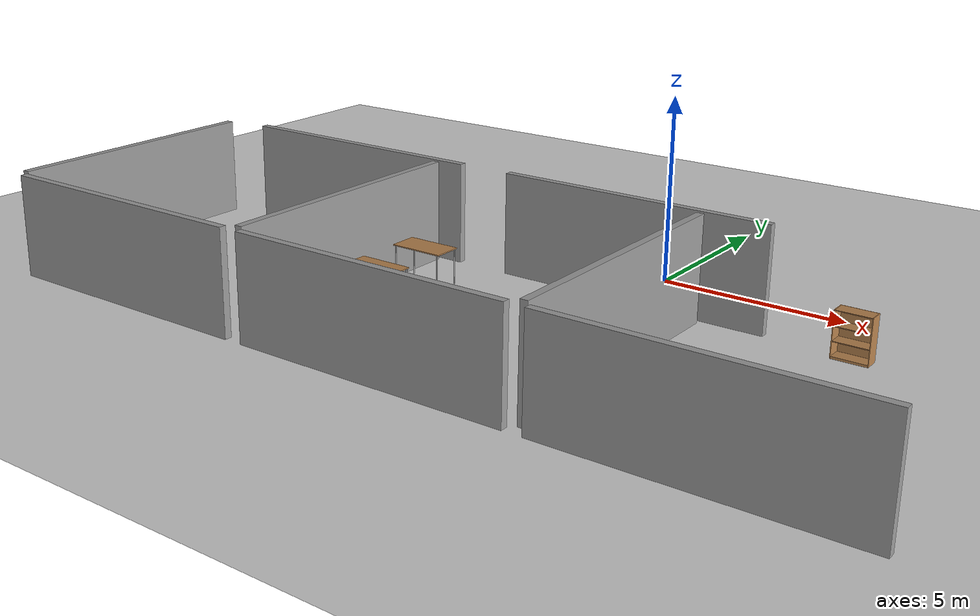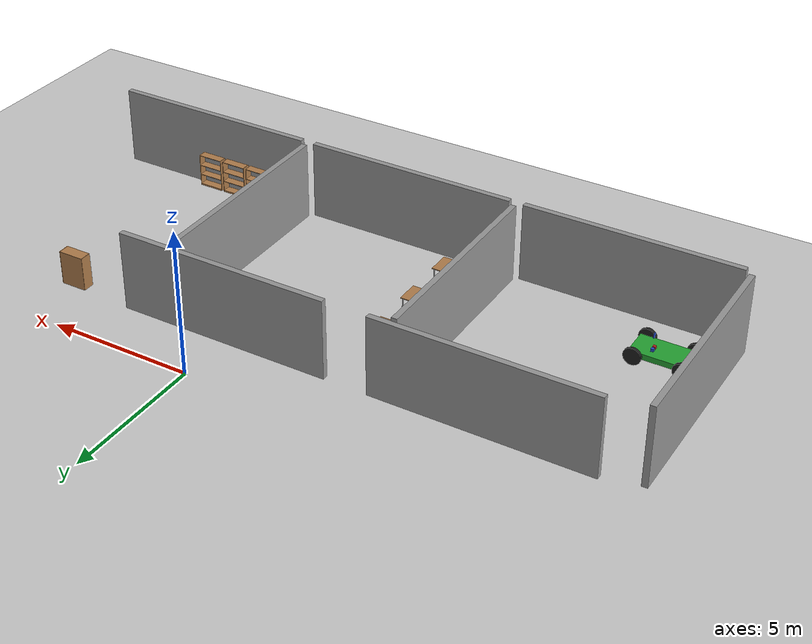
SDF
<sdf version="1.4">
 <world name="default">
  <model name="ground_plane">
   <static>1</static>
   <link name="link">
    <collision name="collision">
     <geometry><plane><normal>0 0 1</normal><size>100 100</size></plane></geometry>
     <surface><friction><ode><mu>100</mu><mu2>50</mu2></ode></friction></surface>
    </collision>
    <visual name="visual">
     <cast_shadows>0</cast_shadows>
     <geometry><plane><normal>0 0 1</normal><size>100 100</size></plane></geometry>
     <material>
      <script><uri>file://media/materials/scripts/gazebo.material</uri><name>Gazebo/Grey</name></script>
     </material>
    </visual>
    <velocity_decay><linear>0</linear><angular>0</angular></velocity_decay>
   </link>
  </model>
  <model name="grey_wall">
   <static>1</static>
   <link name="link">
    <pose>0 0 1.4 0 -0 0</pose>
    <collision name="collision"><geometry><box><size>7.5 0.2 2.8</size></box></geometry></collision>
    <visual name="visual">
     <cast_shadows>0</cast_shadows>
     <geometry><box><size>7.5 0.2 2.8</size></box></geometry>
     <material>
      <script>
       <uri>model://grey_wall/materials/scripts</uri>
       <uri>model://grey_wall/materials/textures</uri>
       <name>vrc/grey_wall</name>
      </script>
     </material>
    </visual>
    <velocity_decay><linear>0</linear><angular>0</angular></velocity_decay>
   </link>
   <pose>-2 -10 0 0 -0 0</pose>
  </model>
  <model name="grey_wall_0">
   <static>1</static>
   <link name="link">
    <pose>0 0 1.4 0 -0 0</pose>
    <collision name="collision"><geometry><box><size>7.5 0.2 2.8</size></box></geometry></collision>
    <visual name="visual">
     <cast_shadows>0</cast_shadows>
     <geometry><box><size>7.5 0.2 2.8</size></box></geometry>
     <material>
      <script>
       <uri>model://grey_wall/materials/scripts</uri>
       <uri>model://grey_wall/materials/textures</uri>
       <name>vrc/grey_wall</name>
      </script>
     </material>
    </visual>
    <velocity_decay><linear>0</linear><angular>0</angular></velocity_decay>
   </link>
   <pose>6 -10 0 0 -0 0</pose>
  </model>
  <model name="grey_wall_1">
   <static>1</static>
   <link name="link">
    <pose>0 0 1.4 0 -0 0</pose>
    <collision name="collision"><geometry><box><size>7.5 0.2 2.8</size></box></geometry></collision>
    <visual name="visual">
     <cast_shadows>0</cast_shadows>
     <geometry><box><size>7.5 0.2 2.8</size></box></geometry>
     <material>
      <script>
       <uri>model://grey_wall/materials/scripts</uri>
       <uri>model://grey_wall/materials/textures</uri>
       <name>vrc/grey_wall</name>
      </script>
     </material>
    </visual>
    <velocity_decay><linear>0</linear><angular>0</angular></velocity_decay>
   </link>
   <pose>2 -6 0 0 0 -1.5708</pose>
  </model>
  <model name="grey_wall_4">
   <static>1</static>
   <link name="link">
    <pose>0 0 1.4 0 -0 0</pose>
    <collision name="collision"><geometry><box><size>7.5 0.2 2.8</size></box></geometry></collision>
    <visual name="visual">
     <cast_shadows>0</cast_shadows>
     <geometry><box><size>7.5 0.2 2.8</size></box></geometry>
     <material>
      <script>
       <uri>model://grey_wall/materials/scripts</uri>
       <uri>model://grey_wall/materials/textures</uri>
       <name>vrc/grey_wall</name>
      </script>
     </material>
    </visual>
    <velocity_decay><linear>0</linear><angular>0</angular></velocity_decay>
   </link>
   <pose>0 -2 0 0 -0 0</pose>
  </model>
  <model name="grey_wall_5">
   <static>1</static>
   <link name="link">
    <pose>0 0 1.4 0 -0 0</pose>
    <collision name="collision"><geometry><box><size>7.5 0.2 2.8</size></box></geometry></collision>
    <visual name="visual">
     <cast_shadows>0</cast_shadows>
     <geometry><box><size>7.5 0.2 2.8</size></box></geometry>
     <material>
      <script>
       <uri>model://grey_wall/materials/scripts</uri>
       <uri>model://grey_wall/materials/textures</uri>
       <name>vrc/grey_wall</name>
      </script>
     </material>
    </visual>
    <velocity_decay><linear>0</linear><angular>0</angular></velocity_decay>
   </link>
   <pose>-10 -10 0 0 -0 0</pose>
  </model>
  <model name="grey_wall_6">
   <static>1</static>
   <link name="link">
    <pose>0 0 1.4 0 -0 0</pose>
    <collision name="collision"><geometry><box><size>7.5 0.2 2.8</size></box></geometry></collision>
    <visual name="visual">
     <cast_shadows>0</cast_shadows>
     <geometry><box><size>7.5 0.2 2.8</size></box></geometry>
     <material>
      <script>
       <uri>model://grey_wall/materials/scripts</uri>
       <uri>model://grey_wall/materials/textures</uri>
       <name>vrc/grey_wall</name>
      </script>
     </material>
    </visual>
    <velocity_decay><linear>0</linear><angular>0</angular></velocity_decay>
   </link>
   <pose>-6 -6 0 0 0 -1.5708</pose>
  </model>
  <model name="grey_wall_7">
   <static>1</static>
   <link name="link">
    <pose>0 0 1.4 0 -0 0</pose>
    <collision name="collision"><geometry><box><size>7.5 0.2 2.8</size></box></geometry></collision>
    <visual name="visual">
     <cast_shadows>0</cast_shadows>
     <geometry><box><size>7.5 0.2 2.8</size></box></geometry>
     <material>
      <script>
       <uri>model://grey_wall/materials/scripts</uri>
       <uri>model://grey_wall/materials/textures</uri>
       <name>vrc/grey_wall</name>
      </script>
     </material>
    </visual>
    <velocity_decay><linear>0</linear><angular>0</angular></velocity_decay>
   </link>
   <pose>-9 -2 0 0 -0 0</pose>
  </model>
  <model name="grey_wall_8">
   <static>1</static>
   <link name="link">
    <pose>0 0 1.4 0 -0 0</pose>
    <collision name="collision"><geometry><box><size>7.5 0.2 2.8</size></box></geometry></collision>
    <visual name="visual">
     <cast_shadows>0</cast_shadows>
     <geometry><box><size>7.5 0.2 2.8</size></box></geometry>
     <material>
      <script>
       <uri>model://grey_wall/materials/scripts</uri>
       <uri>model://grey_wall/materials/textures</uri>
       <name>vrc/grey_wall</name>
      </script>
     </material>
    </visual>
    <velocity_decay><linear>0</linear><angular>0</angular></velocity_decay>
   </link>
   <pose>-14 -6 0 0 0 -1.5708</pose>
  </model>
  <model name="bookshelf">
   <static>1</static>
   <link name="link">
    <inertial><mass>1</mass></inertial>
    <collision name="back">
     <pose>0 0.005 0.6 0 -0 0</pose>
     <geometry><box><size>0.9 0.01 1.2</size></box></geometry>
    </collision>
    <visual name="visual1">
     <pose>0 0.005 0.6 0 -0 0</pose>
     <geometry><box><size>0.9 0.01 1.2</size></box></geometry>
     <material>
      <script><uri>file://media/materials/scripts/gazebo.material</uri><name>Gazebo/Wood</name></script>
     </material>
    </visual>
    <collision name="left_side">
     <pose>0.45 -0.195 0.6 0 -0 0</pose>
     <geometry><box><size>0.02 0.4 1.2</size></box></geometry>
    </collision>
    <visual name="visual2">
     <pose>0.45 -0.195 0.6 0 -0 0</pose>
     <geometry><box><size>0.02 0.4 1.2</size></box></geometry>
     <material>
      <script><uri>file://media/materials/scripts/gazebo.material</uri><name>Gazebo/Wood</name></script>
     </material>
    </visual>
    <collision name="right_side">
     <pose>-0.45 -0.195 0.6 0 -0 0</pose>
     <geometry><box><size>0.02 0.4 1.2</size></box></geometry>
    </collision>
    <visual name="visual3">
     <pose>-0.45 -0.195 0.6 0 -0 0</pose>
     <geometry><box><size>0.02 0.4 1.2</size></box></geometry>
     <material>
      <script><uri>file://media/materials/scripts/gazebo.material</uri><name>Gazebo/Wood</name></script>
     </material>
    </visual>
    <collision name="bottom">
     <pose>0 -0.195 0.03 0 -0 0</pose>
     <geometry><box><size>0.88 0.4 0.06</size></box></geometry>
    </collision>
    <visual name="visual4">
     <pose>0 -0.195 0.03 0 -0 0</pose>
     <geometry><box><size>0.88 0.4 0.06</size></box></geometry>
     <material>
      <script><uri>file://media/materials/scripts/gazebo.material</uri><name>Gazebo/Wood</name></script>
     </material>
    </visual>
    <collision name="top">
     <pose>0 -0.195 1.19 0 -0 0</pose>
     <geometry><box><size>0.88 0.4 0.02</size></box></geometry>
    </collision>
    <visual name="visual5">
     <pose>0 -0.195 1.19 0 -0 0</pose>
     <geometry><box><size>0.88 0.4 0.02</size></box></geometry>
     <material>
      <script><uri>file://media/materials/scripts/gazebo.material</uri><name>Gazebo/Wood</name></script>
     </material>
    </visual>
    <collision name="low_shelf">
     <pose>0 -0.195 0.43 0 -0 0</pose>
     <geometry><box><size>0.88 0.4 0.02</size></box></geometry>
    </collision>
    <visual name="visual6">
     <pose>0 -0.195 0.43 0 -0 0</pose>
     <geometry><box><size>0.88 0.4 0.02</size></box></geometry>
     <material>
      <script><uri>file://media/materials/scripts/gazebo.material</uri><name>Gazebo/Wood</name></script>
     </material>
    </visual>
    <collision name="high_shelf">
     <pose>0 -0.195 0.8 0 -0 0</pose>
     <geometry><box><size>0.88 0.4 0.02</size></box></geometry>
    </collision>
    <visual name="visual7">
     <pose>0 -0.195 0.8 0 -0 0</pose>
     <geometry><box><size>0.88 0.4 0.02</size></box></geometry>
     <material>
      <script><uri>file://media/materials/scripts/gazebo.material</uri><name>Gazebo/Wood</name></script>
     </material>
    </visual>
    <velocity_decay><linear>0</linear><angular>0</angular></velocity_decay>
   </link>
   <pose>2.43808 -9.56157 0 0 -0 2.35619</pose>
  </model>
  <model name="bookshelf_0">
   <static>1</static>
   <link name="link">
    <inertial><mass>1</mass></inertial>
    <collision name="back">
     <pose>0 0.005 0.6 0 -0 0</pose>
     <geometry><box><size>0.9 0.01 1.2</size></box></geometry>
    </collision>
    <visual name="visual1">
     <pose>0 0.005 0.6 0 -0 0</pose>
     <geometry><box><size>0.9 0.01 1.2</size></box></geometry>
     <material>
      <script><uri>file://media/materials/scripts/gazebo.material</uri><name>Gazebo/Wood</name></script>
     </material>
    </visual>
    <collision name="left_side">
     <pose>0.45 -0.195 0.6 0 -0 0</pose>
     <geometry><box><size>0.02 0.4 1.2</size></box></geometry>
    </collision>
    <visual name="visual2">
     <pose>0.45 -0.195 0.6 0 -0 0</pose>
     <geometry><box><size>0.02 0.4 1.2</size></box></geometry>
     <material>
      <script><uri>file://media/materials/scripts/gazebo.material</uri><name>Gazebo/Wood</name></script>
     </material>
    </visual>
    <collision name="right_side">
     <pose>-0.45 -0.195 0.6 0 -0 0</pose>
     <geometry><box><size>0.02 0.4 1.2</size></box></geometry>
    </collision>
    <visual name="visual3">
     <pose>-0.45 -0.195 0.6 0 -0 0</pose>
     <geometry><box><size>0.02 0.4 1.2</size></box></geometry>
     <material>
      <script><uri>file://media/materials/scripts/gazebo.material</uri><name>Gazebo/Wood</name></script>
     </material>
    </visual>
    <collision name="bottom">
     <pose>0 -0.195 0.03 0 -0 0</pose>
     <geometry><box><size>0.88 0.4 0.06</size></box></geometry>
    </collision>
    <visual name="visual4">
     <pose>0 -0.195 0.03 0 -0 0</pose>
     <geometry><box><size>0.88 0.4 0.06</size></box></geometry>
     <material>
      <script><uri>file://media/materials/scripts/gazebo.material</uri><name>Gazebo/Wood</name></script>
     </material>
    </visual>
    <collision name="top">
     <pose>0 -0.195 1.19 0 -0 0</pose>
     <geometry><box><size>0.88 0.4 0.02</size></box></geometry>
    </collision>
    <visual name="visual5">
     <pose>0 -0.195 1.19 0 -0 0</pose>
     <geometry><box><size>0.88 0.4 0.02</size></box></geometry>
     <material>
      <script><uri>file://media/materials/scripts/gazebo.material</uri><name>Gazebo/Wood</name></script>
     </material>
    </visual>
    <collision name="low_shelf">
     <pose>0 -0.195 0.43 0 -0 0</pose>
     <geometry><box><size>0.88 0.4 0.02</size></box></geometry>
    </collision>
    <visual name="visual6">
     <pose>0 -0.195 0.43 0 -0 0</pose>
     <geometry><box><size>0.88 0.4 0.02</size></box></geometry>
     <material>
      <script><uri>file://media/materials/scripts/gazebo.material</uri><name>Gazebo/Wood</name></script>
     </material>
    </visual>
    <collision name="high_shelf">
     <pose>0 -0.195 0.8 0 -0 0</pose>
     <geometry><box><size>0.88 0.4 0.02</size></box></geometry>
    </collision>
    <visual name="visual7">
     <pose>0 -0.195 0.8 0 -0 0</pose>
     <geometry><box><size>0.88 0.4 0.02</size></box></geometry>
     <material>
      <script><uri>file://media/materials/scripts/gazebo.material</uri><name>Gazebo/Wood</name></script>
     </material>
    </visual>
    <velocity_decay><linear>0</linear><angular>0</angular></velocity_decay>
   </link>
   <pose>4 -10 0 0 0 -3.14159</pose>
  </model>
  <model name="bookshelf_1">
   <static>1</static>
   <link name="link">
    <inertial><mass>1</mass></inertial>
    <collision name="back">
     <pose>0 0.005 0.6 0 -0 0</pose>
     <geometry><box><size>0.9 0.01 1.2</size></box></geometry>
    </collision>
    <visual name="visual1">
     <pose>0 0.005 0.6 0 -0 0</pose>
     <geometry><box><size>0.9 0.01 1.2</size></box></geometry>
     <material>
      <script><uri>file://media/materials/scripts/gazebo.material</uri><name>Gazebo/Wood</name></script>
     </material>
    </visual>
    <collision name="left_side">
     <pose>0.45 -0.195 0.6 0 -0 0</pose>
     <geometry><box><size>0.02 0.4 1.2</size></box></geometry>
    </collision>
    <visual name="visual2">
     <pose>0.45 -0.195 0.6 0 -0 0</pose>
     <geometry><box><size>0.02 0.4 1.2</size></box></geometry>
     <material>
      <script><uri>file://media/materials/scripts/gazebo.material</uri><name>Gazebo/Wood</name></script>
     </material>
    </visual>
    <collision name="right_side">
     <pose>-0.45 -0.195 0.6 0 -0 0</pose>
     <geometry><box><size>0.02 0.4 1.2</size></box></geometry>
    </collision>
    <visual name="visual3">
     <pose>-0.45 -0.195 0.6 0 -0 0</pose>
     <geometry><box><size>0.02 0.4 1.2</size></box></geometry>
     <material>
      <script><uri>file://media/materials/scripts/gazebo.material</uri><name>Gazebo/Wood</name></script>
     </material>
    </visual>
    <collision name="bottom">
     <pose>0 -0.195 0.03 0 -0 0</pose>
     <geometry><box><size>0.88 0.4 0.06</size></box></geometry>
    </collision>
    <visual name="visual4">
     <pose>0 -0.195 0.03 0 -0 0</pose>
     <geometry><box><size>0.88 0.4 0.06</size></box></geometry>
     <material>
      <script><uri>file://media/materials/scripts/gazebo.material</uri><name>Gazebo/Wood</name></script>
     </material>
    </visual>
    <collision name="top">
     <pose>0 -0.195 1.19 0 -0 0</pose>
     <geometry><box><size>0.88 0.4 0.02</size></box></geometry>
    </collision>
    <visual name="visual5">
     <pose>0 -0.195 1.19 0 -0 0</pose>
     <geometry><box><size>0.88 0.4 0.02</size></box></geometry>
     <material>
      <script><uri>file://media/materials/scripts/gazebo.material</uri><name>Gazebo/Wood</name></script>
     </material>
    </visual>
    <collision name="low_shelf">
     <pose>0 -0.195 0.43 0 -0 0</pose>
     <geometry><box><size>0.88 0.4 0.02</size></box></geometry>
    </collision>
    <visual name="visual6">
     <pose>0 -0.195 0.43 0 -0 0</pose>
     <geometry><box><size>0.88 0.4 0.02</size></box></geometry>
     <material>
      <script><uri>file://media/materials/scripts/gazebo.material</uri><name>Gazebo/Wood</name></script>
     </material>
    </visual>
    <collision name="high_shelf">
     <pose>0 -0.195 0.8 0 -0 0</pose>
     <geometry><box><size>0.88 0.4 0.02</size></box></geometry>
    </collision>
    <visual name="visual7">
     <pose>0 -0.195 0.8 0 -0 0</pose>
     <geometry><box><size>0.88 0.4 0.02</size></box></geometry>
     <material>
      <script><uri>file://media/materials/scripts/gazebo.material</uri><name>Gazebo/Wood</name></script>
     </material>
    </visual>
    <velocity_decay><linear>0</linear><angular>0</angular></velocity_decay>
   </link>
   <pose>5 -10 0 0 -0 3.14159</pose>
  </model>
  <model name="table">
   <static>1</static>
   <link name="link">
    <collision name="surface">
     <pose>0 0 1 0 -0 0</pose>
     <geometry><box><size>1.5 0.8 0.03</size></box></geometry>
     <surface><friction><ode><mu>0.6</mu><mu2>0.6</mu2></ode></friction></surface>
    </collision>
    <visual name="visual1">
     <pose>0 0 1 0 -0 0</pose>
     <geometry><box><size>1.5 0.8 0.03</size></box></geometry>
     <material>
      <script><uri>file://media/materials/scripts/gazebo.material</uri><name>Gazebo/Wood</name></script>
     </material>
    </visual>
    <collision name="front_left_leg">
     <pose>0.68 0.38 0.5 0 -0 0</pose>
     <geometry><cylinder><radius>0.02</radius><length>1</length></cylinder></geometry>
    </collision>
    <visual name="front_left_leg">
     <pose>0.68 0.38 0.5 0 -0 0</pose>
     <geometry><cylinder><radius>0.02</radius><length>1</length></cylinder></geometry>
     <material>
      <script><uri>file://media/materials/scripts/gazebo.material</uri><name>Gazebo/Grey</name></script>
     </material>
    </visual>
    <collision name="front_right_leg">
     <pose>0.68 -0.38 0.5 0 -0 0</pose>
     <geometry><cylinder><radius>0.02</radius><length>1</length></cylinder></geometry>
    </collision>
    <visual name="front_right_leg">
     <pose>0.68 -0.38 0.5 0 -0 0</pose>
     <geometry><cylinder><radius>0.02</radius><length>1</length></cylinder></geometry>
     <material>
      <script><uri>file://media/materials/scripts/gazebo.material</uri><name>Gazebo/Grey</name></script>
     </material>
    </visual>
    <collision name="back_right_leg">
     <pose>-0.68 -0.38 0.5 0 -0 0</pose>
     <geometry><cylinder><radius>0.02</radius><length>1</length></cylinder></geometry>
    </collision>
    <visual name="back_right_leg">
     <pose>-0.68 -0.38 0.5 0 -0 0</pose>
     <geometry><cylinder><radius>0.02</radius><length>1</length></cylinder></geometry>
     <material>
      <script><uri>file://media/materials/scripts/gazebo.material</uri><name>Gazebo/Grey</name></script>
     </material>
    </visual>
    <collision name="back_left_leg">
     <pose>-0.68 0.38 0.5 0 -0 0</pose>
     <geometry><cylinder><radius>0.02</radius><length>1</length></cylinder></geometry>
    </collision>
    <visual name="back_left_leg">
     <pose>-0.68 0.38 0.5 0 -0 0</pose>
     <geometry><cylinder><radius>0.02</radius><length>1</length></cylinder></geometry>
     <material>
      <script><uri>file://media/materials/scripts/gazebo.material</uri><name>Gazebo/Grey</name></script>
     </material>
    </visual>
    <velocity_decay><linear>0</linear><angular>0</angular></velocity_decay>
   </link>
   <pose>-5 -8 0 0 -0 0</pose>
  </model>
  <model name="bookshelf_2">
   <static>1</static>
   <link name="link">
    <inertial><mass>1</mass></inertial>
    <collision name="back">
     <pose>0 0.005 0.6 0 -0 0</pose>
     <geometry><box><size>0.9 0.01 1.2</size></box></geometry>
    </collision>
    <visual name="visual1">
     <pose>0 0.005 0.6 0 -0 0</pose>
     <geometry><box><size>0.9 0.01 1.2</size></box></geometry>
     <material>
      <script><uri>file://media/materials/scripts/gazebo.material</uri><name>Gazebo/Wood</name></script>
     </material>
    </visual>
    <collision name="left_side">
     <pose>0.45 -0.195 0.6 0 -0 0</pose>
     <geometry><box><size>0.02 0.4 1.2</size></box></geometry>
    </collision>
    <visual name="visual2">
     <pose>0.45 -0.195 0.6 0 -0 0</pose>
     <geometry><box><size>0.02 0.4 1.2</size></box></geometry>
     <material>
      <script><uri>file://media/materials/scripts/gazebo.material</uri><name>Gazebo/Wood</name></script>
     </material>
    </visual>
    <collision name="right_side">
     <pose>-0.45 -0.195 0.6 0 -0 0</pose>
     <geometry><box><size>0.02 0.4 1.2</size></box></geometry>
    </collision>
    <visual name="visual3">
     <pose>-0.45 -0.195 0.6 0 -0 0</pose>
     <geometry><box><size>0.02 0.4 1.2</size></box></geometry>
     <material>
      <script><uri>file://media/materials/scripts/gazebo.material</uri><name>Gazebo/Wood</name></script>
     </material>
    </visual>
    <collision name="bottom">
     <pose>0 -0.195 0.03 0 -0 0</pose>
     <geometry><box><size>0.88 0.4 0.06</size></box></geometry>
    </collision>
    <visual name="visual4">
     <pose>0 -0.195 0.03 0 -0 0</pose>
     <geometry><box><size>0.88 0.4 0.06</size></box></geometry>
     <material>
      <script><uri>file://media/materials/scripts/gazebo.material</uri><name>Gazebo/Wood</name></script>
     </material>
    </visual>
    <collision name="top">
     <pose>0 -0.195 1.19 0 -0 0</pose>
     <geometry><box><size>0.88 0.4 0.02</size></box></geometry>
    </collision>
    <visual name="visual5">
     <pose>0 -0.195 1.19 0 -0 0</pose>
     <geometry><box><size>0.88 0.4 0.02</size></box></geometry>
     <material>
      <script><uri>file://media/materials/scripts/gazebo.material</uri><name>Gazebo/Wood</name></script>
     </material>
    </visual>
    <collision name="low_shelf">
     <pose>0 -0.195 0.43 0 -0 0</pose>
     <geometry><box><size>0.88 0.4 0.02</size></box></geometry>
    </collision>
    <visual name="visual6">
     <pose>0 -0.195 0.43 0 -0 0</pose>
     <geometry><box><size>0.88 0.4 0.02</size></box></geometry>
     <material>
      <script><uri>file://media/materials/scripts/gazebo.material</uri><name>Gazebo/Wood</name></script>
     </material>
    </visual>
    <collision name="high_shelf">
     <pose>0 -0.195 0.8 0 -0 0</pose>
     <geometry><box><size>0.88 0.4 0.02</size></box></geometry>
    </collision>
    <visual name="visual7">
     <pose>0 -0.195 0.8 0 -0 0</pose>
     <geometry><box><size>0.88 0.4 0.02</size></box></geometry>
     <material>
      <script><uri>file://media/materials/scripts/gazebo.material</uri><name>Gazebo/Wood</name></script>
     </material>
    </visual>
    <velocity_decay><linear>0</linear><angular>0</angular></velocity_decay>
   </link>
   <pose>6 -2 0 0 -0 0</pose>
  </model>
  <model name="bookshelf_3">
   <static>1</static>
   <link name="link">
    <inertial><mass>1</mass></inertial>
    <collision name="back">
     <pose>0 0.005 0.6 0 -0 0</pose>
     <geometry><box><size>0.9 0.01 1.2</size></box></geometry>
    </collision>
    <visual name="visual1">
     <pose>0 0.005 0.6 0 -0 0</pose>
     <geometry><box><size>0.9 0.01 1.2</size></box></geometry>
     <material>
      <script><uri>file://media/materials/scripts/gazebo.material</uri><name>Gazebo/Wood</name></script>
     </material>
    </visual>
    <collision name="left_side">
     <pose>0.45 -0.195 0.6 0 -0 0</pose>
     <geometry><box><size>0.02 0.4 1.2</size></box></geometry>
    </collision>
    <visual name="visual2">
     <pose>0.45 -0.195 0.6 0 -0 0</pose>
     <geometry><box><size>0.02 0.4 1.2</size></box></geometry>
     <material>
      <script><uri>file://media/materials/scripts/gazebo.material</uri><name>Gazebo/Wood</name></script>
     </material>
    </visual>
    <collision name="right_side">
     <pose>-0.45 -0.195 0.6 0 -0 0</pose>
     <geometry><box><size>0.02 0.4 1.2</size></box></geometry>
    </collision>
    <visual name="visual3">
     <pose>-0.45 -0.195 0.6 0 -0 0</pose>
     <geometry><box><size>0.02 0.4 1.2</size></box></geometry>
     <material>
      <script><uri>file://media/materials/scripts/gazebo.material</uri><name>Gazebo/Wood</name></script>
     </material>
    </visual>
    <collision name="bottom">
     <pose>0 -0.195 0.03 0 -0 0</pose>
     <geometry><box><size>0.88 0.4 0.06</size></box></geometry>
    </collision>
    <visual name="visual4">
     <pose>0 -0.195 0.03 0 -0 0</pose>
     <geometry><box><size>0.88 0.4 0.06</size></box></geometry>
     <material>
      <script><uri>file://media/materials/scripts/gazebo.material</uri><name>Gazebo/Wood</name></script>
     </material>
    </visual>
    <collision name="top">
     <pose>0 -0.195 1.19 0 -0 0</pose>
     <geometry><box><size>0.88 0.4 0.02</size></box></geometry>
    </collision>
    <visual name="visual5">
     <pose>0 -0.195 1.19 0 -0 0</pose>
     <geometry><box><size>0.88 0.4 0.02</size></box></geometry>
     <material>
      <script><uri>file://media/materials/scripts/gazebo.material</uri><name>Gazebo/Wood</name></script>
     </material>
    </visual>
    <collision name="low_shelf">
     <pose>0 -0.195 0.43 0 -0 0</pose>
     <geometry><box><size>0.88 0.4 0.02</size></box></geometry>
    </collision>
    <visual name="visual6">
     <pose>0 -0.195 0.43 0 -0 0</pose>
     <geometry><box><size>0.88 0.4 0.02</size></box></geometry>
     <material>
      <script><uri>file://media/materials/scripts/gazebo.material</uri><name>Gazebo/Wood</name></script>
     </material>
    </visual>
    <collision name="high_shelf">
     <pose>0 -0.195 0.8 0 -0 0</pose>
     <geometry><box><size>0.88 0.4 0.02</size></box></geometry>
    </collision>
    <visual name="visual7">
     <pose>0 -0.195 0.8 0 -0 0</pose>
     <geometry><box><size>0.88 0.4 0.02</size></box></geometry>
     <material>
      <script><uri>file://media/materials/scripts/gazebo.material</uri><name>Gazebo/Wood</name></script>
     </material>
    </visual>
    <velocity_decay><linear>0</linear><angular>0</angular></velocity_decay>
   </link>
   <pose>6 -10 0 0 0 -3.14159</pose>
  </model>
  <model name="table_0">
   <static>1</static>
   <link name="link">
    <collision name="surface">
     <pose>0 0 1 0 -0 0</pose>
     <geometry><box><size>1.5 0.8 0.03</size></box></geometry>
     <surface><friction><ode><mu>0.6</mu><mu2>0.6</mu2></ode></friction></surface>
    </collision>
    <visual name="visual1">
     <pose>0 0 1 0 -0 0</pose>
     <geometry><box><size>1.5 0.8 0.03</size></box></geometry>
     <material>
      <script><uri>file://media/materials/scripts/gazebo.material</uri><name>Gazebo/Wood</name></script>
     </material>
    </visual>
    <collision name="front_left_leg">
     <pose>0.68 0.38 0.5 0 -0 0</pose>
     <geometry><cylinder><radius>0.02</radius><length>1</length></cylinder></geometry>
    </collision>
    <visual name="front_left_leg">
     <pose>0.68 0.38 0.5 0 -0 0</pose>
     <geometry><cylinder><radius>0.02</radius><length>1</length></cylinder></geometry>
     <material>
      <script><uri>file://media/materials/scripts/gazebo.material</uri><name>Gazebo/Grey</name></script>
     </material>
    </visual>
    <collision name="front_right_leg">
     <pose>0.68 -0.38 0.5 0 -0 0</pose>
     <geometry><cylinder><radius>0.02</radius><length>1</length></cylinder></geometry>
    </collision>
    <visual name="front_right_leg">
     <pose>0.68 -0.38 0.5 0 -0 0</pose>
     <geometry><cylinder><radius>0.02</radius><length>1</length></cylinder></geometry>
     <material>
      <script><uri>file://media/materials/scripts/gazebo.material</uri><name>Gazebo/Grey</name></script>
     </material>
    </visual>
    <collision name="back_right_leg">
     <pose>-0.68 -0.38 0.5 0 -0 0</pose>
     <geometry><cylinder><radius>0.02</radius><length>1</length></cylinder></geometry>
    </collision>
    <visual name="back_right_leg">
     <pose>-0.68 -0.38 0.5 0 -0 0</pose>
     <geometry><cylinder><radius>0.02</radius><length>1</length></cylinder></geometry>
     <material>
      <script><uri>file://media/materials/scripts/gazebo.material</uri><name>Gazebo/Grey</name></script>
     </material>
    </visual>
    <collision name="back_left_leg">
     <pose>-0.68 0.38 0.5 0 -0 0</pose>
     <geometry><cylinder><radius>0.02</radius><length>1</length></cylinder></geometry>
    </collision>
    <visual name="back_left_leg">
     <pose>-0.68 0.38 0.5 0 -0 0</pose>
     <geometry><cylinder><radius>0.02</radius><length>1</length></cylinder></geometry>
     <material>
      <script><uri>file://media/materials/scripts/gazebo.material</uri><name>Gazebo/Grey</name></script>
     </material>
    </visual>
    <velocity_decay><linear>0</linear><angular>0</angular></velocity_decay>
   </link>
   <pose>-5 -6 0 0 -0 0</pose>
  </model>
  <model name="table_1">
   <static>1</static>
   <link name="link">
    <collision name="surface">
     <pose>0 0 1 0 -0 0</pose>
     <geometry><box><size>1.5 0.8 0.03</size></box></geometry>
     <surface><friction><ode><mu>0.6</mu><mu2>0.6</mu2></ode></friction></surface>
    </collision>
    <visual name="visual1">
     <pose>0 0 1 0 -0 0</pose>
     <geometry><box><size>1.5 0.8 0.03</size></box></geometry>
     <material>
      <script><uri>file://media/materials/scripts/gazebo.material</uri><name>Gazebo/Wood</name></script>
     </material>
    </visual>
    <collision name="front_left_leg">
     <pose>0.68 0.38 0.5 0 -0 0</pose>
     <geometry><cylinder><radius>0.02</radius><length>1</length></cylinder></geometry>
    </collision>
    <visual name="front_left_leg">
     <pose>0.68 0.38 0.5 0 -0 0</pose>
     <geometry><cylinder><radius>0.02</radius><length>1</length></cylinder></geometry>
     <material>
      <script><uri>file://media/materials/scripts/gazebo.material</uri><name>Gazebo/Grey</name></script>
     </material>
    </visual>
    <collision name="front_right_leg">
     <pose>0.68 -0.38 0.5 0 -0 0</pose>
     <geometry><cylinder><radius>0.02</radius><length>1</length></cylinder></geometry>
    </collision>
    <visual name="front_right_leg">
     <pose>0.68 -0.38 0.5 0 -0 0</pose>
     <geometry><cylinder><radius>0.02</radius><length>1</length></cylinder></geometry>
     <material>
      <script><uri>file://media/materials/scripts/gazebo.material</uri><name>Gazebo/Grey</name></script>
     </material>
    </visual>
    <collision name="back_right_leg">
     <pose>-0.68 -0.38 0.5 0 -0 0</pose>
     <geometry><cylinder><radius>0.02</radius><length>1</length></cylinder></geometry>
    </collision>
    <visual name="back_right_leg">
     <pose>-0.68 -0.38 0.5 0 -0 0</pose>
     <geometry><cylinder><radius>0.02</radius><length>1</length></cylinder></geometry>
     <material>
      <script><uri>file://media/materials/scripts/gazebo.material</uri><name>Gazebo/Grey</name></script>
     </material>
    </visual>
    <collision name="back_left_leg">
     <pose>-0.68 0.38 0.5 0 -0 0</pose>
     <geometry><cylinder><radius>0.02</radius><length>1</length></cylinder></geometry>
    </collision>
    <visual name="back_left_leg">
     <pose>-0.68 0.38 0.5 0 -0 0</pose>
     <geometry><cylinder><radius>0.02</radius><length>1</length></cylinder></geometry>
     <material>
      <script><uri>file://media/materials/scripts/gazebo.material</uri><name>Gazebo/Grey</name></script>
     </material>
    </visual>
    <velocity_decay><linear>0</linear><angular>0</angular></velocity_decay>
   </link>
   <pose>-5 -4 0 0 -0 0</pose>
  </model>
  <model name="car">
   <link name="chassis">
    <pose>0 0 0.3 0 -0 0</pose>
    <collision name="collision"><geometry><box><size>2 1 0.2</size></box></geometry></collision>
    <visual name="visual">
     <geometry><box><size>2 1 0.2</size></box></geometry>
     <material>
      <script><uri>file://media/materials/scripts/gazebo.material</uri><name>Gazebo/Green</name></script>
     </material>
    </visual>
    <velocity_decay><linear>0</linear><angular>0</angular></velocity_decay>
    <inertial>
     <inertia><ixx>1</ixx><ixy>0</ixy><ixz>0</ixz><iyy>1</iyy><iyz>0</iyz><izz>1</izz></inertia>
     <mass>1</mass>
    </inertial>
   </link>
   <link name="front_left_wheel">
    <pose>0.8 0.6 0.3 0 1.5707 1.5707</pose>
    <collision name="collision">
     <geometry><cylinder><radius>0.3</radius><length>0.1</length></cylinder></geometry>
    </collision>
    <visual name="visual">
     <geometry><cylinder><radius>0.3</radius><length>0.1</length></cylinder></geometry>
     <material>
      <script><uri>file://media/materials/scripts/gazebo.material</uri><name>Gazebo/Black</name></script>
     </material>
    </visual>
    <velocity_decay><linear>0</linear><angular>0</angular></velocity_decay>
    <inertial>
     <inertia><ixx>1</ixx><ixy>0</ixy><ixz>0</ixz><iyy>1</iyy><iyz>0</iyz><izz>1</izz></inertia>
     <mass>1</mass>
    </inertial>
   </link>
   <link name="front_right_wheel">
    <pose>0.8 -0.6 0.3 0 1.5707 1.5707</pose>
    <collision name="collision">
     <geometry><cylinder><radius>0.3</radius><length>0.1</length></cylinder></geometry>
    </collision>
    <visual name="visual">
     <geometry><cylinder><radius>0.3</radius><length>0.1</length></cylinder></geometry>
     <material>
      <script><uri>file://media/materials/scripts/gazebo.material</uri><name>Gazebo/Black</name></script>
     </material>
    </visual>
    <velocity_decay><linear>0</linear><angular>0</angular></velocity_decay>
    <inertial>
     <inertia><ixx>1</ixx><ixy>0</ixy><ixz>0</ixz><iyy>1</iyy><iyz>0</iyz><izz>1</izz></inertia>
     <mass>1</mass>
    </inertial>
   </link>
   <link name="back_right_wheel">
    <pose>-0.8 -0.6 0.3 0 1.5707 1.5707</pose>
    <collision name="collision">
     <geometry><cylinder><radius>0.3</radius><length>0.1</length></cylinder></geometry>
    </collision>
    <visual name="visual">
     <geometry><cylinder><radius>0.3</radius><length>0.1</length></cylinder></geometry>
     <material>
      <script><uri>file://media/materials/scripts/gazebo.material</uri><name>Gazebo/Black</name></script>
     </material>
    </visual>
    <velocity_decay><linear>0</linear><angular>0</angular></velocity_decay>
    <inertial>
     <inertia><ixx>1</ixx><ixy>0</ixy><ixz>0</ixz><iyy>1</iyy><iyz>0</iyz><izz>1</izz></inertia>
     <mass>1</mass>
    </inertial>
   </link>
   <link name="back_left_wheel">
    <pose>-0.8 0.6 0.3 0 1.5707 1.5707</pose>
    <collision name="collision">
     <geometry><cylinder><radius>0.3</radius><length>0.1</length></cylinder></geometry>
    </collision>
    <visual name="visual">
     <geometry><cylinder><radius>0.3</radius><length>0.1</length></cylinder></geometry>
     <material>
      <script><uri>file://media/materials/scripts/gazebo.material</uri><name>Gazebo/Black</name></script>
     </material>
    </visual>
    <velocity_decay><linear>0</linear><angular>0</angular></velocity_decay>
    <inertial>
     <inertia><ixx>1</ixx><ixy>0</ixy><ixz>0</ixz><iyy>1</iyy><iyz>0</iyz><izz>1</izz></inertia>
     <mass>1</mass>
    </inertial>
   </link>
   <link name="gas_pedal">
    <pose>0.3 0.1 0.5 0 -0 0</pose>
    <collision name="collision"><geometry><box><size>0.1 0.1 0.1</size></box></geometry></collision>
    <visual name="visual">
     <geometry><box><size>0.1 0.1 0.1</size></box></geometry>
     <material>
      <script><uri>file://media/materials/scripts/gazebo.material</uri><name>Gazebo/Red</name></script>
     </material>
    </visual>
    <velocity_decay><linear>0</linear><angular>0</angular></velocity_decay>
    <inertial>
     <inertia><ixx>1</ixx><ixy>0</ixy><ixz>0</ixz><iyy>1</iyy><iyz>0</iyz><izz>1</izz></inertia>
     <mass>1</mass>
    </inertial>
   </link>
   <link name="brake_pedal">
    <pose>0.3 0.25 0.5 0 -0 0</pose>
    <collision name="collision"><geometry><box><size>0.1 0.1 0.1</size></box></geometry></collision>
    <visual name="visual">
     <geometry><box><size>0.1 0.1 0.1</size></box></geometry>
     <material>
      <script><uri>file://media/materials/scripts/gazebo.material</uri><name>Gazebo/Blue</name></script>
     </material>
    </visual>
    <velocity_decay><linear>0</linear><angular>0</angular></velocity_decay>
    <inertial>
     <inertia><ixx>1</ixx><ixy>0</ixy><ixz>0</ixz><iyy>1</iyy><iyz>0</iyz><izz>1</izz></inertia>
     <mass>1</mass>
    </inertial>
   </link>
   <link name="steering_wheel">
    <pose>0.3 0.2 1 0 1.5707 0</pose>
    <collision name="collision">
     <geometry><cylinder><radius>0.1</radius><length>0.01</length></cylinder></geometry>
    </collision>
    <visual name="visual">
     <geometry><cylinder><radius>0.1</radius><length>0.01</length></cylinder></geometry>
     <material>
      <script><uri>file://media/materials/scripts/gazebo.material</uri><name>Gazebo/Blue</name></script>
     </material>
    </visual>
    <velocity_decay><linear>0</linear><angular>0</angular></velocity_decay>
    <inertial>
     <inertia><ixx>1</ixx><ixy>0</ixy><ixz>0</ixz><iyy>1</iyy><iyz>0</iyz><izz>1</izz></inertia>
     <mass>1</mass>
    </inertial>
   </link>
   <joint name="gas_joint" type="prismatic">
    <parent>chassis</parent>
    <child>gas_pedal</child>
    <axis><xyz>1 0 0</xyz><limit><lower>0</lower><upper>0.2</upper></limit></axis>
   </joint>
   <joint name="brake_joint" type="prismatic">
    <parent>chassis</parent>
    <child>brake_pedal</child>
    <axis><xyz>1 0 0</xyz><limit><lower>0</lower><upper>0.2</upper></limit></axis>
   </joint>
   <joint name="steering_joint" type="revolute">
    <parent>chassis</parent>
    <child>steering_wheel</child>
    <axis><xyz>1 0 0</xyz><limit><lower>-7.853</lower><upper>7.853</upper></limit></axis>
   </joint>
   <joint name="front_left_joint" type="revolute2">
    <parent>chassis</parent>
    <child>front_left_wheel</child>
    <axis><xyz>0 0 1</xyz><limit><lower>8.68205e-06</lower><upper>8.68205e-06</upper></limit></axis>
    <axis2><xyz>0 1 0</xyz></axis2>
    <physics><ode><limit><cfm>0</cfm><erp>0.9</erp></limit></ode></physics>
   </joint>
   <joint name="front_right_joint" type="revolute2">
    <parent>chassis</parent>
    <child>front_right_wheel</child>
    <axis><xyz>0 0 1</xyz><limit><lower>8.68205e-06</lower><upper>8.68205e-06</upper></limit></axis>
    <axis2><xyz>0 1 0</xyz></axis2>
    <physics><ode><limit><cfm>0</cfm><erp>0.9</erp></limit></ode></physics>
   </joint>
   <joint name="back_right_joint" type="revolute2">
    <parent>chassis</parent>
    <child>back_right_wheel</child>
    <axis><xyz>0 0 1</xyz><limit><lower>0</lower><upper>0</upper></limit></axis>
    <axis2><xyz>0 1 0</xyz></axis2>
    <physics><ode><limit><cfm>0</cfm><erp>0.9</erp></limit></ode></physics>
   </joint>
   <joint name="back_left_joint" type="revolute2">
    <parent>chassis</parent>
    <child>back_left_wheel</child>
    <axis><xyz>0 0 1</xyz><limit><lower>0</lower><upper>0</upper></limit></axis>
    <axis2><xyz>0 1 0</xyz></axis2>
    <physics><ode><limit><cfm>0</cfm><erp>0.9</erp></limit></ode></physics>
   </joint>
   <plugin name="vehicle" filename="libVehiclePlugin.so">
    <front_left>front_left_joint</front_left>
    <front_right>front_right_joint</front_right>
    <back_left>back_left_joint</back_left>
    <back_right>back_right_joint</back_right>
    <gas>gas_joint</gas>
    <brake>brake_joint</brake>
    <steering>steering_joint</steering>
    <front_power>10</front_power>
    <rear_power>10</rear_power>
    <tire_angle_range>0.5</tire_angle_range>
    <max_speed>10</max_speed>
    <aero_load>0.1</aero_load>
   </plugin>
   <pose>-12.1597 -8.00023 -0.002616 -0.000273 0.000907 0.00026</pose>
   <static>0</static>
  </model>
 </world>
</sdf>
